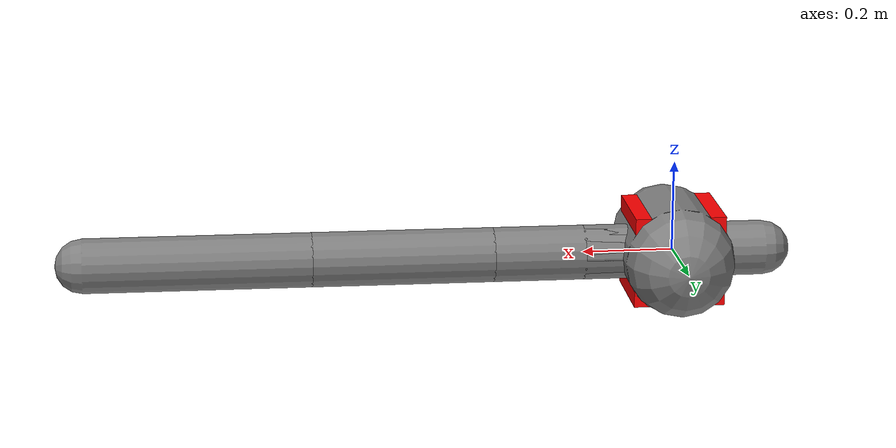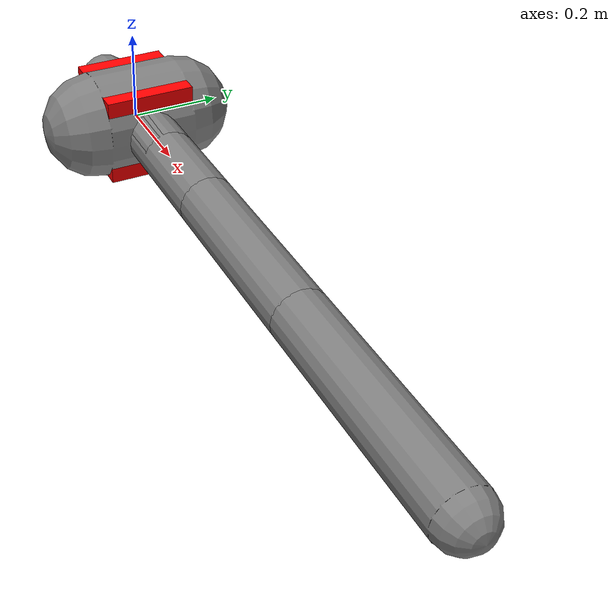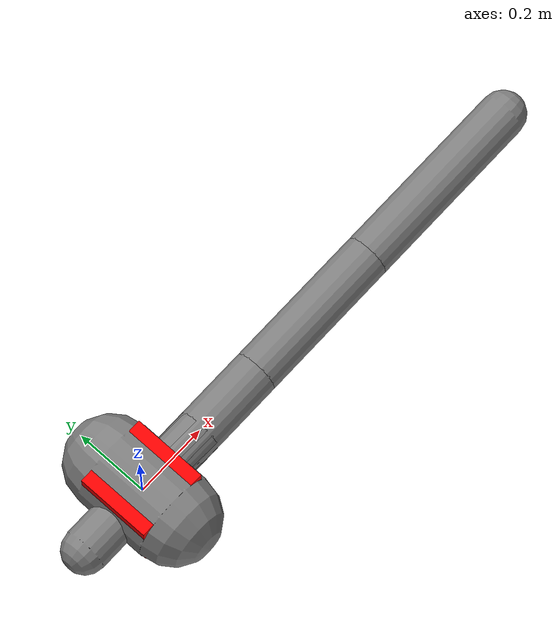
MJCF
<mujoco model="arm3d">
  <compiler inertiafromgeom="true" angle="radian" coordinate="local" />
  <option timestep="0.01" gravity="0 0 0" iterations="20" integrator="Euler" />

  <default>
    <joint armature='0.04' damping="1" limited="true"/>
    <geom friction=".8 .1 .1" density="300" margin="0.002" condim="1" contype="1" conaffinity="1"/>
  </default>

  <worldbody>

    <body name="palm" pos="0 0 0">
          <geom type="capsule" fromto="0 -0.1 0 0 0.1 0" size="0.12"/>

          <body name="proximal_1" pos="0 0 0">
              <joint name="proximal_j_1" type="hinge" pos="0 0 0" axis="0 1 0" range="-2.5236 2.3963" damping="1.0" />
              <geom type="capsule" fromto="0 0 0 0.4 0 0" size="0.06" contype="1" conaffinity="1"/>
              <body name="distal_1" pos="0.4 0 0">
                  <joint name="distal_j_1" type="hinge" pos="0 0 0" axis="0 1 0" range="-2.3213 2.3" damping="1.0"/>
                  <geom type="capsule" fromto="0 0 0 0.4 0 0" size="0.06" contype="1" conaffinity="1"/>
                  <body name="distal_2" pos="0.4 0 0">
                      <joint name="distal_j_2" type="hinge" pos="0 0 0" axis="0 1 0" range="-2.3213 2.3" damping="1.0"/>
                      <geom type="capsule" fromto="0 0 0 0.5 0 0" size="0.06" contype="1" conaffinity="1"/>
                      <body name="distal_4" pos="0.4 0 0">
                          <site name="tip arm" pos="0 0 0" size="0.01" />
                      </body>
                  </body>
              </body>
          </body>
    </body>
    <body name="paddle" pos="0 0 0">
      <joint name="paddle_slidez" type="slide" pos="0.1 0.05 0.05" axis="0 0 1" range="-10.3213 10.3" damping="2.0"/>
      <joint name="paddle_slidex" type="slide" pos="0.05 0.05 0.05" axis="1 0 0" range="-10.3213 10.3" damping="2.0"/>
      <geom type="capsule" fromto="-0.2 0 0 0.2 0 0" size="0.06"/>
      <joint name="hinge_j" type="hinge" pos="0 0 0" axis="0 1 0" range="-2.3213 2.3" damping="0.05"/>
      <site name="paddle pos" pos="0 0 0" size="0.01" />
    </body>

    <body name="goal" pos="0.0 0.0 0.0">
      <geom rgba="1. 0. 0. 1" type="box" size="0.1 0.1 0.1" density='0.00001' contype="0" conaffinity="0"/>
      <site name="goal pos" pos="0 0 0" size="0.01" />
    </body>
  </worldbody>

  <actuator>
    <motor joint="proximal_j_1" ctrlrange="-2 2" ctrllimited="true"/>
    <motor joint="distal_j_1" ctrlrange="-2 2" ctrllimited="true"/>
    <motor joint="distal_j_2" ctrlrange="-2 2" ctrllimited="true"/>
  </actuator>
</mujoco>
